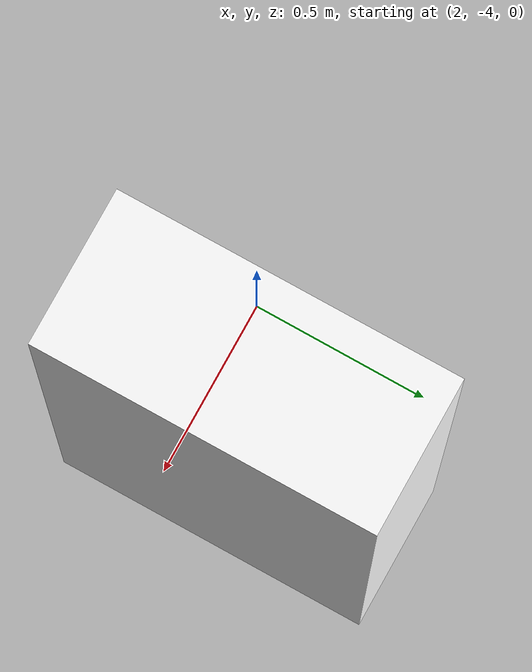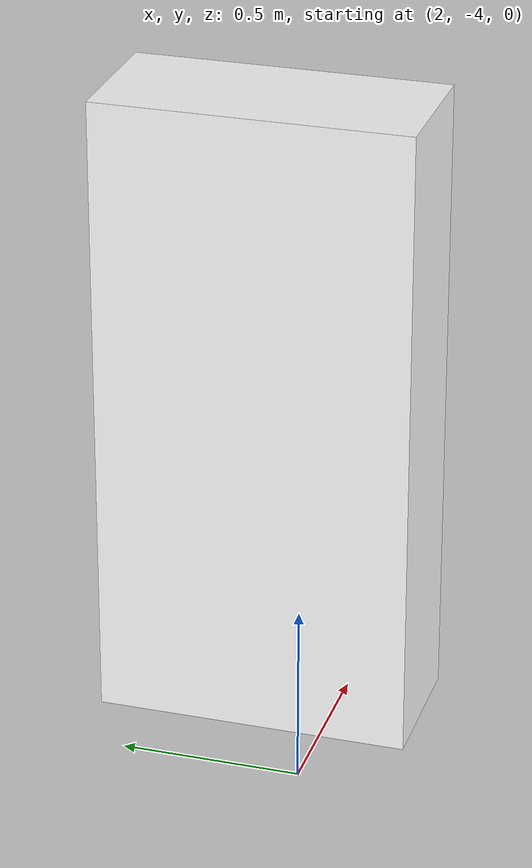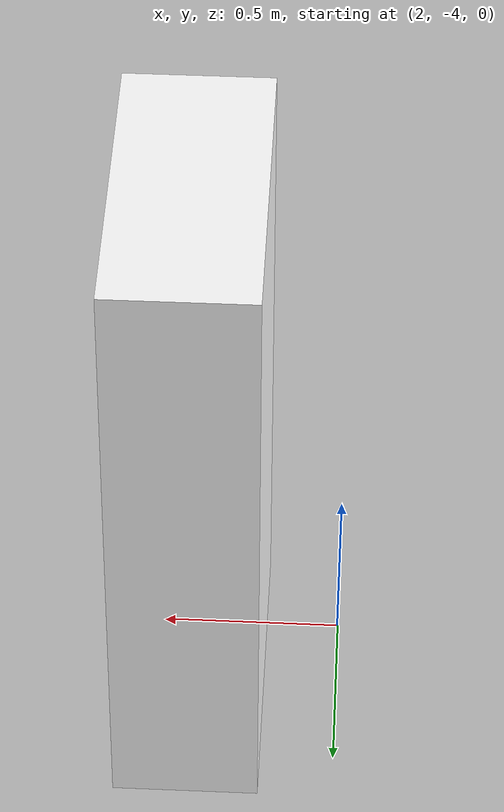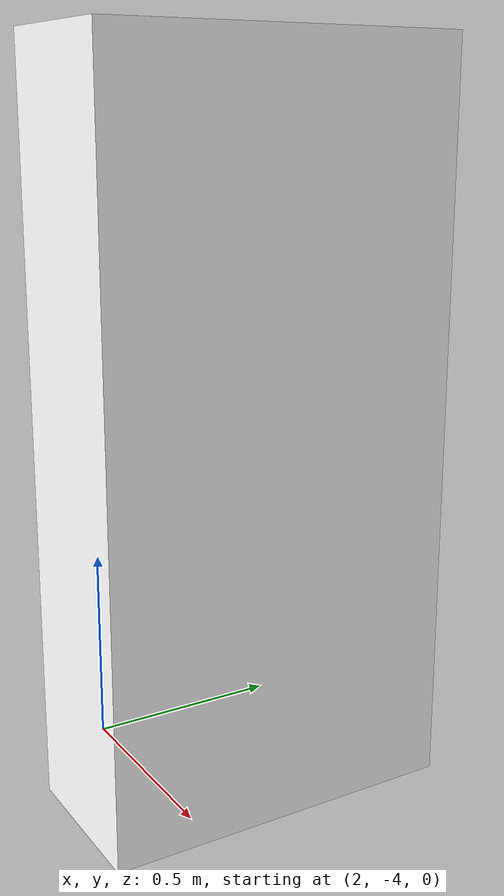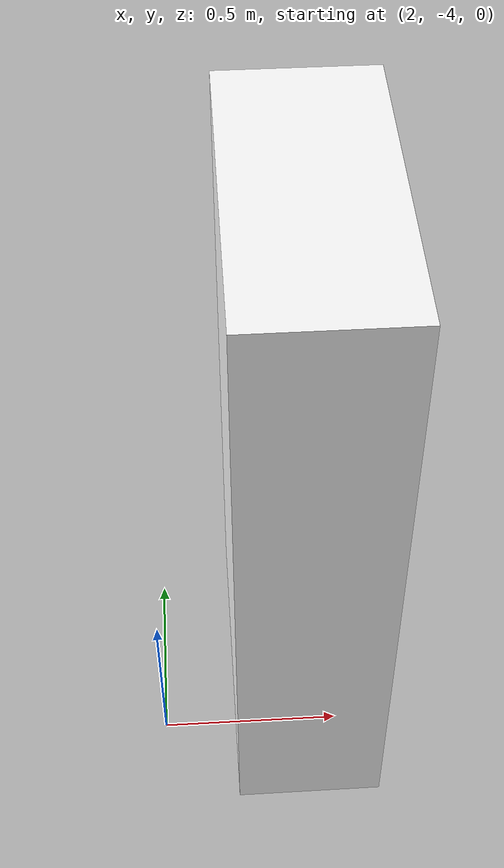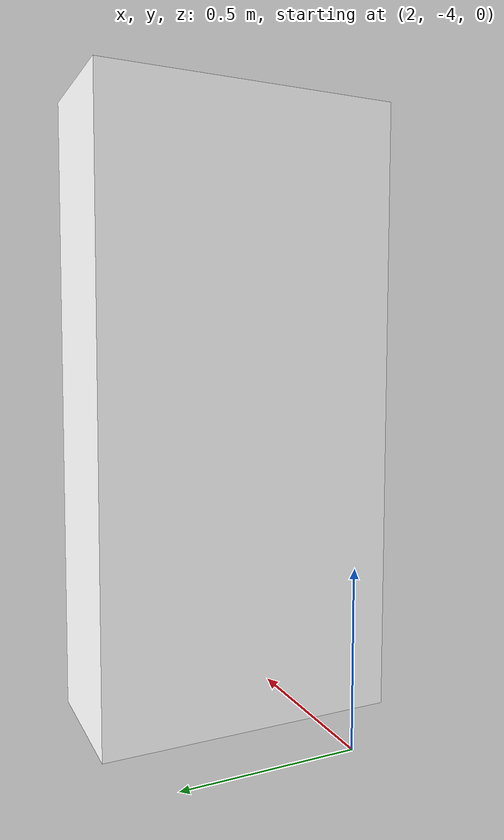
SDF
<?xml version="1.0" ?>
<sdf version="1.6">
<model name="shelf">
      <static>0</static>
      <link name="link">
        <inertial>
          <mass>1.000000</mass>
        </inertial>
        <collision name="back">
          <pose>0.000000 0.005000 0.900000 0.000000 0.000000 0.000000</pose>
          <geometry>
            <box>
              <size>0.900000 0.010000 1.800000</size>
            </box>
          </geometry>
          <surface>
            <bounce />
            <friction>
              <ode />
            </friction>
            <contact>
              <ode />
            </contact>
          </surface>
          <max_contacts>10</max_contacts>
        </collision>

        <collision name="bottom">
          <pose>0.000000 -0.195000 0.90000 0.000000 0.000000 0.000000</pose>
          <geometry>
            <box>
              <size>0.880000 0.400000 1.8000</size>
            </box>
          </geometry>
          <surface>
            <bounce />
            <friction>
              <ode />
            </friction>
            <contact>
              <ode />
            </contact>
          </surface>
          <max_contacts>10</max_contacts>
        </collision>
        <visual name="visual4">
          <pose>0.000000 -0.195000 0.90000 0.000000 0.000000 0.000000</pose>
          <geometry>
            <box>
              <size>0.880000 0.400000 1.80000</size>
            </box>
          </geometry>
        <material>
            <ambient>1 1 1 1</ambient>
            <diffuse>1 1 1 1</diffuse>
            <pbr>
            <metal>
                <albedo_map>/home/marat/exchange_project_ws/src/collab_industrial_research/gz_world_package/models/shelf/materials/textures/white_table.png</albedo_map>
                <roughness>0.8</roughness>
                <metalness>0.1</metalness>
            </metal>
            </pbr>
        </material>
        </visual>

        <velocity_decay>
          <linear>0.000000</linear>
          <angular>0.000000</angular>
        </velocity_decay>
        <self_collide>0</self_collide>
        <kinematic>0</kinematic>
        <gravity>1</gravity>
      </link>
      <pose>2.6 -3.8 0.0 0.0 0.0 -1.57</pose>
    </model>
</sdf>
